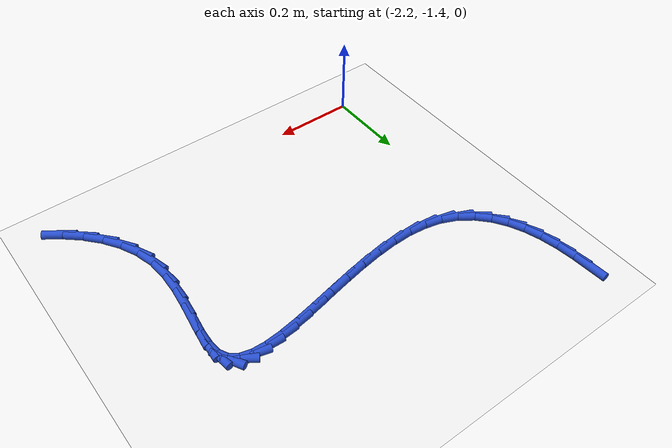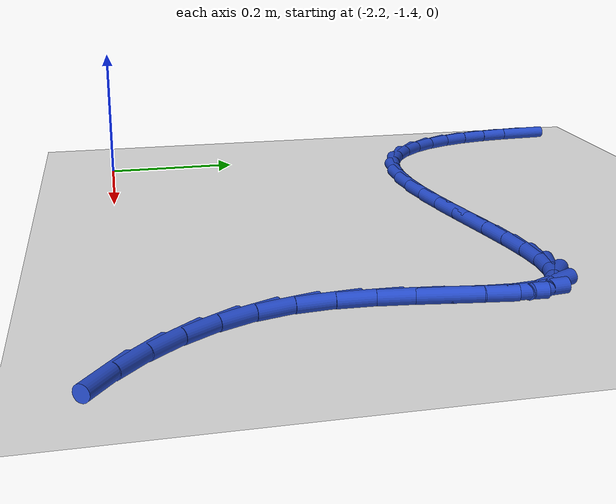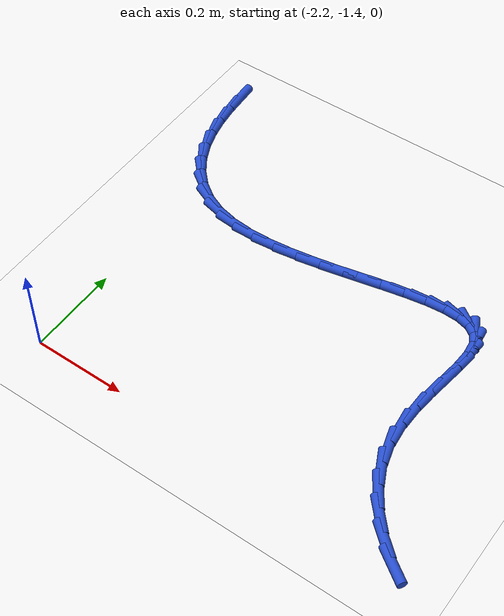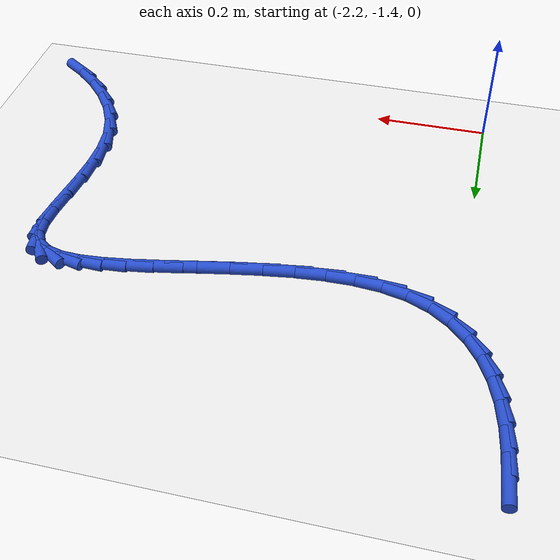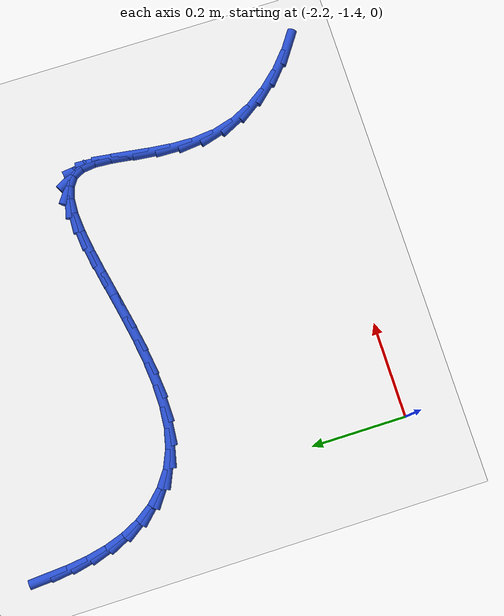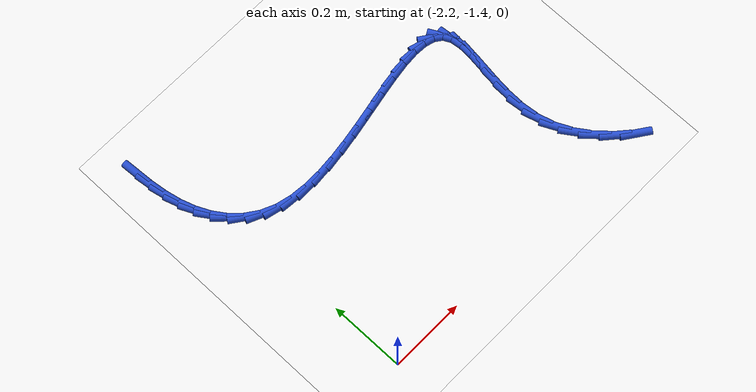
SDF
<sdf version="1.6">
 <world name="default">
  <model name="ground_plane">
   <static>1</static>
   <link name="link">
    <collision name="collision">
     <geometry><plane><normal>0 0 1</normal><size>100 100</size></plane></geometry>
     <surface><friction><ode><mu>100</mu><mu2>50</mu2></ode></friction></surface>
    </collision>
    <visual name="visual">
     <cast_shadows>0</cast_shadows>
     <geometry><plane><normal>0 0 1</normal><size>100 100</size></plane></geometry>
     <material>
      <script><uri>file://media/materials/scripts/gazebo.material</uri><name>Gazebo/WhiteGlow</name></script>
     </material>
    </visual>
   </link>
  </model>
  <model name="line">
   <link name="link_130">
    <pose>-2.287085281145685 -0.6220610266511761 0.01 0 1.57 -1.50714913815028</pose>
    <collision name="collision">
     <geometry><cylinder><radius>0.01</radius><length>0.08</length></cylinder></geometry>
    </collision>
    <visual name="visual">
     <material>
      <script><name>Gazebo/Blue</name><uri>file://media/materials/scripts/gazebo.material</uri></script>
     </material>
     <geometry><cylinder><radius>0.01</radius><length>0.08</length></cylinder></geometry>
    </visual>
   </link>
   <link name="link_131">
    <pose>-2.2842881394573715 -0.6659492750826802 0.01 0 1.57 -1.4418432006340178</pose>
    <collision name="collision">
     <geometry><cylinder><radius>0.01</radius><length>0.08</length></cylinder></geometry>
    </collision>
    <visual name="visual">
     <material>
      <script><name>Gazebo/Blue</name><uri>file://media/materials/scripts/gazebo.material</uri></script>
     </material>
     <geometry><cylinder><radius>0.01</radius><length>0.08</length></cylinder></geometry>
    </visual>
   </link>
   <link name="link_132">
    <pose>-2.2787585413950615 -0.7085920073639134 0.01 0 1.57 -1.3578308448345735</pose>
    <collision name="collision">
     <geometry><cylinder><radius>0.01</radius><length>0.08</length></cylinder></geometry>
    </collision>
    <visual name="visual">
     <material>
      <script><name>Gazebo/Blue</name><uri>file://media/materials/scripts/gazebo.material</uri></script>
     </material>
     <geometry><cylinder><radius>0.01</radius><length>0.08</length></cylinder></geometry>
    </visual>
   </link>
   <link name="link_133">
    <pose>-2.269914760130112 -0.7494891236943175 0.01 0 1.57 -1.2524051009090595</pose>
    <collision name="collision">
     <geometry><cylinder><radius>0.01</radius><length>0.08</length></cylinder></geometry>
    </collision>
    <visual name="visual">
     <material>
      <script><name>Gazebo/Blue</name><uri>file://media/materials/scripts/gazebo.material</uri></script>
     </material>
     <geometry><cylinder><radius>0.01</radius><length>0.08</length></cylinder></geometry>
    </visual>
   </link>
   <link name="link_134">
    <pose>-2.257175068833879 -0.7881405242733325 0.01 0 1.57 -1.1236692131778143</pose>
    <collision name="collision">
     <geometry><cylinder><radius>0.01</radius><length>0.08</length></cylinder></geometry>
    </collision>
    <visual name="visual">
     <material>
      <script><name>Gazebo/Blue</name><uri>file://media/materials/scripts/gazebo.material</uri></script>
     </material>
     <geometry><cylinder><radius>0.01</radius><length>0.08</length></cylinder></geometry>
    </visual>
   </link>
   <link name="link_135">
    <pose>-2.239957740677718 -0.8240461093003998 0.01 0 1.57 -0.9721948720945287</pose>
    <collision name="collision">
     <geometry><cylinder><radius>0.01</radius><length>0.08</length></cylinder></geometry>
    </collision>
    <visual name="visual">
     <material>
      <script><name>Gazebo/Blue</name><uri>file://media/materials/scripts/gazebo.material</uri></script>
     </material>
     <geometry><cylinder><radius>0.01</radius><length>0.08</length></cylinder></geometry>
    </visual>
   </link>
   <link name="link_136">
    <pose>-2.2176810488329846 -0.8567057789749575 0.01 0 1.57 -0.8028737576482955</pose>
    <collision name="collision">
     <geometry><cylinder><radius>0.01</radius><length>0.08</length></cylinder></geometry>
    </collision>
    <visual name="visual">
     <material>
      <script><name>Gazebo/Blue</name><uri>file://media/materials/scripts/gazebo.material</uri></script>
     </material>
     <geometry><cylinder><radius>0.01</radius><length>0.08</length></cylinder></geometry>
    </visual>
   </link>
   <link name="link_137">
    <pose>-2.1897687626717377 -0.8856110874570372 0.01 0 1.57 -0.6186852201007044</pose>
    <collision name="collision">
     <geometry><cylinder><radius>0.01</radius><length>0.08</length></cylinder></geometry>
    </collision>
    <visual name="visual">
     <material>
      <script><name>Gazebo/Blue</name><uri>file://media/materials/scripts/gazebo.material</uri></script>
     </material>
     <geometry><cylinder><radius>0.01</radius><length>0.08</length></cylinder></geometry>
    </visual>
   </link>
   <link name="link_138">
    <pose>-2.1560769185504536 -0.9095971868787217 0.01 0 1.57 -0.41256689400376245</pose>
    <collision name="collision">
     <geometry><cylinder><radius>0.01</radius><length>0.08</length></cylinder></geometry>
    </collision>
    <visual name="visual">
     <material>
      <script><name>Gazebo/Blue</name><uri>file://media/materials/scripts/gazebo.material</uri></script>
     </material>
     <geometry><cylinder><radius>0.01</radius><length>0.08</length></cylinder></geometry>
    </visual>
   </link>
   <link name="link_139">
    <pose>-2.1172128150064493 -0.9266074768809055 0.01 0 1.57 -0.22631923727019607</pose>
    <collision name="collision">
     <geometry><cylinder><radius>0.01</radius><length>0.08</length></cylinder></geometry>
    </collision>
    <visual name="visual">
     <material>
      <script><name>Gazebo/Blue</name><uri>file://media/materials/scripts/gazebo.material</uri></script>
     </material>
     <geometry><cylinder><radius>0.01</radius><length>0.08</length></cylinder></geometry>
    </visual>
   </link>
   <link name="link_140">
    <pose>-2.07398912377907 -0.936560342729021 0.01 0 1.57 -0.08406032965369345</pose>
    <collision name="collision">
     <geometry><cylinder><radius>0.01</radius><length>0.08</length></cylinder></geometry>
    </collision>
    <visual name="visual">
     <material>
      <script><name>Gazebo/Blue</name><uri>file://media/materials/scripts/gazebo.material</uri></script>
     </material>
     <geometry><cylinder><radius>0.01</radius><length>0.08</length></cylinder></geometry>
    </visual>
   </link>
   <link name="link_141">
    <pose>-2.0272903237701767 -0.9404951315426279 0.01 0 1.57 0.020958091637770484</pose>
    <collision name="collision">
     <geometry><cylinder><radius>0.01</radius><length>0.08</length></cylinder></geometry>
    </collision>
    <visual name="visual">
     <material>
      <script><name>Gazebo/Blue</name><uri>file://media/materials/scripts/gazebo.material</uri></script>
     </material>
     <geometry><cylinder><radius>0.01</radius><length>0.08</length></cylinder></geometry>
    </visual>
   </link>
   <link name="link_142">
    <pose>-1.9780015851967332 -0.939461982371099 0.01 0 1.57 0.0967864189699732</pose>
    <collision name="collision">
     <geometry><cylinder><radius>0.01</radius><length>0.08</length></cylinder></geometry>
    </collision>
    <visual name="visual">
     <material>
      <script><name>Gazebo/Blue</name><uri>file://media/materials/scripts/gazebo.material</uri></script>
     </material>
     <geometry><cylinder><radius>0.01</radius><length>0.08</length></cylinder></geometry>
    </visual>
   </link>
   <link name="link_143">
    <pose>-1.9270080782757009 -0.9345110342638066 0.01 0 1.57 0.149770223818592</pose>
    <collision name="collision">
     <geometry><cylinder><radius>0.01</radius><length>0.08</length></cylinder></geometry>
    </collision>
    <visual name="visual">
     <material>
      <script><name>Gazebo/Blue</name><uri>file://media/materials/scripts/gazebo.material</uri></script>
     </material>
     <geometry><cylinder><radius>0.01</radius><length>0.08</length></cylinder></geometry>
    </visual>
   </link>
   <link name="link_144">
    <pose>-1.8751949732240463 -0.9266924262701238 0.01 0 1.57 0.1841055930380213</pose>
    <collision name="collision">
     <geometry><cylinder><radius>0.01</radius><length>0.08</length></cylinder></geometry>
    </collision>
    <visual name="visual">
     <material>
      <script><name>Gazebo/Blue</name><uri>file://media/materials/scripts/gazebo.material</uri></script>
     </material>
     <geometry><cylinder><radius>0.01</radius><length>0.08</length></cylinder></geometry>
    </visual>
   </link>
   <link name="link_145">
    <pose>-1.8234474402587313 -0.917056297439423 0.01 0 1.57 0.2020128504591638</pose>
    <collision name="collision">
     <geometry><cylinder><radius>0.01</radius><length>0.08</length></cylinder></geometry>
    </collision>
    <visual name="visual">
     <material>
      <script><name>Gazebo/Blue</name><uri>file://media/materials/scripts/gazebo.material</uri></script>
     </material>
     <geometry><cylinder><radius>0.01</radius><length>0.08</length></cylinder></geometry>
    </visual>
   </link>
   <link name="link_146">
    <pose>-1.7726506495967194 -0.9066527868210771 0.01 0 1.57 0.20384006301321367</pose>
    <collision name="collision">
     <geometry><cylinder><radius>0.01</radius><length>0.08</length></cylinder></geometry>
    </collision>
    <visual name="visual">
     <material>
      <script><name>Gazebo/Blue</name><uri>file://media/materials/scripts/gazebo.material</uri></script>
     </material>
     <geometry><cylinder><radius>0.01</radius><length>0.08</length></cylinder></geometry>
    </visual>
   </link>
   <link name="link_147">
    <pose>-1.7236897714549746 -0.8965320334644585 0.01 0 1.57 0.18780986851699538</pose>
    <collision name="collision">
     <geometry><cylinder><radius>0.01</radius><length>0.08</length></cylinder></geometry>
    </collision>
    <visual name="visual">
     <material>
      <script><name>Gazebo/Blue</name><uri>file://media/materials/scripts/gazebo.material</uri></script>
     </material>
     <geometry><cylinder><radius>0.01</radius><length>0.08</length></cylinder></geometry>
    </visual>
   </link>
   <link name="link_148">
    <pose>-1.6774499760504589 -0.8877441764189402 0.01 0 1.57 0.14911452570881847</pose>
    <collision name="collision">
     <geometry><cylinder><radius>0.01</radius><length>0.08</length></cylinder></geometry>
    </collision>
    <visual name="visual">
     <material>
      <script><name>Gazebo/Blue</name><uri>file://media/materials/scripts/gazebo.material</uri></script>
     </material>
     <geometry><cylinder><radius>0.01</radius><length>0.08</length></cylinder></geometry>
    </visual>
   </link>
   <link name="link_149">
    <pose>-1.6348164336001372 -0.8813393547338945 0.01 0 1.57 0.07775279806638094</pose>
    <collision name="collision">
     <geometry><cylinder><radius>0.01</radius><length>0.08</length></cylinder></geometry>
    </collision>
    <visual name="visual">
     <material>
      <script><name>Gazebo/Blue</name><uri>file://media/materials/scripts/gazebo.material</uri></script>
     </material>
     <geometry><cylinder><radius>0.01</radius><length>0.08</length></cylinder></geometry>
    </visual>
   </link>
   <link name="link_150">
    <pose>-1.5966743143209738 -0.878367707458695 0.01 0 1.57 -0.04610318235182344</pose>
    <collision name="collision">
     <geometry><cylinder><radius>0.01</radius><length>0.08</length></cylinder></geometry>
    </collision>
    <visual name="visual">
     <material>
      <script><name>Gazebo/Blue</name><uri>file://media/materials/scripts/gazebo.material</uri></script>
     </material>
     <geometry><cylinder><radius>0.01</radius><length>0.08</length></cylinder></geometry>
    </visual>
   </link>
   <link name="link_151">
    <pose>-1.5639087884299308 -0.8798793736427134 0.01 0 1.57 -0.25980784310401506</pose>
    <collision name="collision">
     <geometry><cylinder><radius>0.01</radius><length>0.08</length></cylinder></geometry>
    </collision>
    <visual name="visual">
     <material>
      <script><name>Gazebo/Blue</name><uri>file://media/materials/scripts/gazebo.material</uri></script>
     </material>
     <geometry><cylinder><radius>0.01</radius><length>0.08</length></cylinder></geometry>
    </visual>
   </link>
   <link name="link_152">
    <pose>-1.5374050261439716 -0.8869244923353231 0.01 0 1.57 -0.6134574013083861</pose>
    <collision name="collision">
     <geometry><cylinder><radius>0.01</radius><length>0.08</length></cylinder></geometry>
    </collision>
    <visual name="visual">
     <material>
      <script><name>Gazebo/Blue</name><uri>file://media/materials/scripts/gazebo.material</uri></script>
     </material>
     <geometry><cylinder><radius>0.01</radius><length>0.08</length></cylinder></geometry>
    </visual>
   </link>
   <link name="link_153">
    <pose>-1.5180481976800602 -0.9005532025858962 0.01 0 1.57 -1.0808039011317816</pose>
    <collision name="collision">
     <geometry><cylinder><radius>0.01</radius><length>0.08</length></cylinder></geometry>
    </collision>
    <visual name="visual">
     <material>
      <script><name>Gazebo/Blue</name><uri>file://media/materials/scripts/gazebo.material</uri></script>
     </material>
     <geometry><cylinder><radius>0.01</radius><length>0.08</length></cylinder></geometry>
    </visual>
   </link>
   <link name="link_154">
    <pose>-1.5067119435245393 -0.9218068824973987 0.01 0 1.57 -1.4503169255423174</pose>
    <collision name="collision">
     <geometry><cylinder><radius>0.01</radius><length>0.08</length></cylinder></geometry>
    </collision>
    <visual name="visual">
     <material>
      <script><name>Gazebo/Blue</name><uri>file://media/materials/scripts/gazebo.material</uri></script>
     </material>
     <geometry><cylinder><radius>0.01</radius><length>0.08</length></cylinder></geometry>
    </visual>
   </link>
   <link name="link_155">
    <pose>-1.5031890811022501 -0.950905639214368 0.01 0 1.57 1.51103495948706</pose>
    <collision name="collision">
     <geometry><cylinder><radius>0.01</radius><length>0.08</length></cylinder></geometry>
    </collision>
    <visual name="visual">
     <material>
      <script><name>Gazebo/Blue</name><uri>file://media/materials/scripts/gazebo.material</uri></script>
     </material>
     <geometry><cylinder><radius>0.01</radius><length>0.08</length></cylinder></geometry>
    </visual>
   </link>
   <link name="link_156">
    <pose>-1.5053241184104384 -0.9865891433437531 0.01 0 1.57 1.4385752575730693</pose>
    <collision name="collision">
     <geometry><cylinder><radius>0.01</radius><length>0.08</length></cylinder></geometry>
    </collision>
    <visual name="visual">
     <material>
      <script><name>Gazebo/Blue</name><uri>file://media/materials/scripts/gazebo.material</uri></script>
     </material>
     <geometry><cylinder><radius>0.01</radius><length>0.08</length></cylinder></geometry>
    </visual>
   </link>
   <link name="link_157">
    <pose>-1.5107574188613753 -1.0274419448026004 0.01 0 1.57 1.4289091889531724</pose>
    <collision name="collision">
     <geometry><cylinder><radius>0.01</radius><length>0.08</length></cylinder></geometry>
    </collision>
    <visual name="visual">
     <material>
      <script><name>Gazebo/Blue</name><uri>file://media/materials/scripts/gazebo.material</uri></script>
     </material>
     <geometry><cylinder><radius>0.01</radius><length>0.08</length></cylinder></geometry>
    </visual>
   </link>
   <link name="link_158">
    <pose>-1.517129345867333 -1.0720485935079598 0.01 0 1.57 1.4657227597600417</pose>
    <collision name="collision">
     <geometry><cylinder><radius>0.01</radius><length>0.08</length></cylinder></geometry>
    </collision>
    <visual name="visual">
     <material>
      <script><name>Gazebo/Blue</name><uri>file://media/materials/scripts/gazebo.material</uri></script>
     </material>
     <geometry><cylinder><radius>0.01</radius><length>0.08</length></cylinder></geometry>
    </visual>
   </link>
   <link name="link_159">
    <pose>-1.5220802628405834 -1.1189936393768798 0.01 0 1.57 1.5463533282874167</pose>
    <collision name="collision">
     <geometry><cylinder><radius>0.01</radius><length>0.08</length></cylinder></geometry>
    </collision>
    <visual name="visual">
     <material>
      <script><name>Gazebo/Blue</name><uri>file://media/materials/scripts/gazebo.material</uri></script>
     </material>
     <geometry><cylinder><radius>0.01</radius><length>0.08</length></cylinder></geometry>
    </visual>
   </link>
   <link name="link_160">
    <pose>-1.5232505331933988 -1.16686163232641 0.01 0 1.57 -1.4662718160117503</pose>
    <collision name="collision">
     <geometry><cylinder><radius>0.01</radius><length>0.08</length></cylinder></geometry>
    </collision>
    <visual name="visual">
     <material>
      <script><name>Gazebo/Blue</name><uri>file://media/materials/scripts/gazebo.material</uri></script>
     </material>
     <geometry><cylinder><radius>0.01</radius><length>0.08</length></cylinder></geometry>
    </visual>
   </link>
   <link name="link_161">
    <pose>-1.5182805203380505 -1.214237122273597 0.01 0 1.57 -1.2907667513011294</pose>
    <collision name="collision">
     <geometry><cylinder><radius>0.01</radius><length>0.08</length></cylinder></geometry>
    </collision>
    <visual name="visual">
     <material>
      <script><name>Gazebo/Blue</name><uri>file://media/materials/scripts/gazebo.material</uri></script>
     </material>
     <geometry><cylinder><radius>0.01</radius><length>0.08</length></cylinder></geometry>
    </visual>
   </link>
   <link name="link_162">
    <pose>-1.5051759014648318 -1.2598047196525726 0.01 0 1.57 -1.1176502115069458</pose>
    <collision name="collision">
     <geometry><cylinder><radius>0.01</radius><length>0.08</length></cylinder></geometry>
    </collision>
    <visual name="visual">
     <material>
      <script><name>Gazebo/Blue</name><uri>file://media/materials/scripts/gazebo.material</uri></script>
     </material>
     <geometry><cylinder><radius>0.01</radius><length>0.08</length></cylinder></geometry>
    </visual>
   </link>
   <link name="link_163">
    <pose>-1.4842060898087255 -1.3028690788508992 0.01 0 1.57 -0.9663310354707959</pose>
    <collision name="collision">
     <geometry><cylinder><radius>0.01</radius><length>0.08</length></cylinder></geometry>
    </collision>
    <visual name="visual">
     <material>
      <script><name>Gazebo/Blue</name><uri>file://media/materials/scripts/gazebo.material</uri></script>
     </material>
     <geometry><cylinder><radius>0.01</radius><length>0.08</length></cylinder></geometry>
    </visual>
   </link>
   <link name="link_164">
    <pose>-1.456506479852693 -1.3429720490641905 0.01 0 1.57 -0.8338287842521543</pose>
    <collision name="collision">
     <geometry><cylinder><radius>0.01</radius><length>0.08</length></cylinder></geometry>
    </collision>
    <visual name="visual">
     <material>
      <script><name>Gazebo/Blue</name><uri>file://media/materials/scripts/gazebo.material</uri></script>
     </material>
     <geometry><cylinder><radius>0.01</radius><length>0.08</length></cylinder></geometry>
    </visual>
   </link>
   <link name="link_165">
    <pose>-1.4232142127869578 -1.3796559579163126 0.01 0 1.57 -0.7154873270164945</pose>
    <collision name="collision">
     <geometry><cylinder><radius>0.01</radius><length>0.08</length></cylinder></geometry>
    </collision>
    <visual name="visual">
     <material>
      <script><name>Gazebo/Blue</name><uri>file://media/materials/scripts/gazebo.material</uri></script>
     </material>
     <geometry><cylinder><radius>0.01</radius><length>0.08</length></cylinder></geometry>
    </visual>
   </link>
   <link name="link_166">
    <pose>-1.385466429801744 -1.4124631330311266 0.01 0 1.57 -0.6062414957350719</pose>
    <collision name="collision">
     <geometry><cylinder><radius>0.01</radius><length>0.08</length></cylinder></geometry>
    </collision>
    <visual name="visual">
     <material>
      <script><name>Gazebo/Blue</name><uri>file://media/materials/scripts/gazebo.material</uri></script>
     </material>
     <geometry><cylinder><radius>0.01</radius><length>0.08</length></cylinder></geometry>
    </visual>
   </link>
  </model>
 </world>
</sdf>
